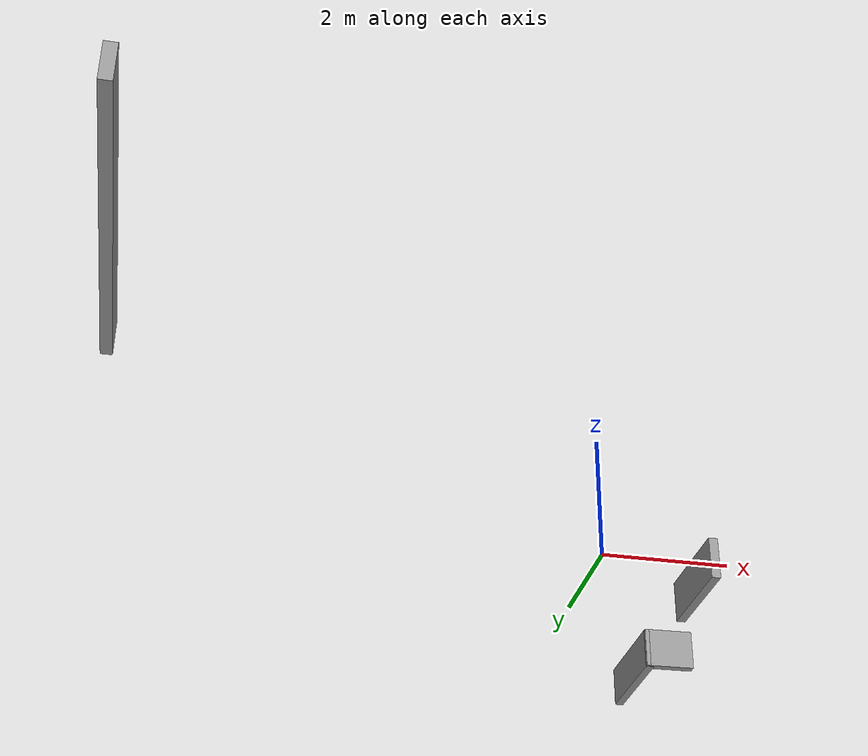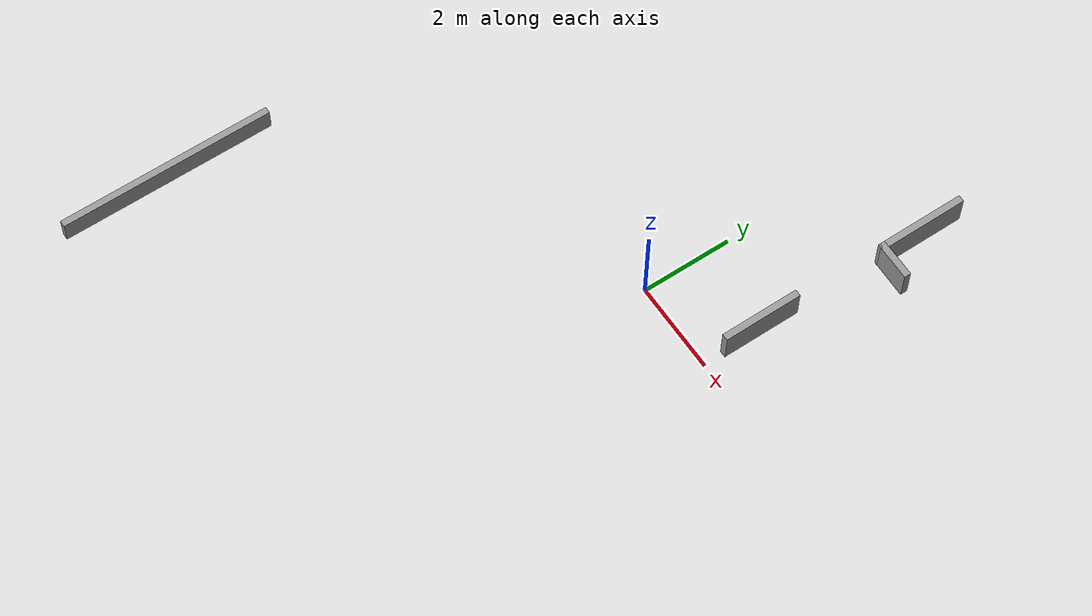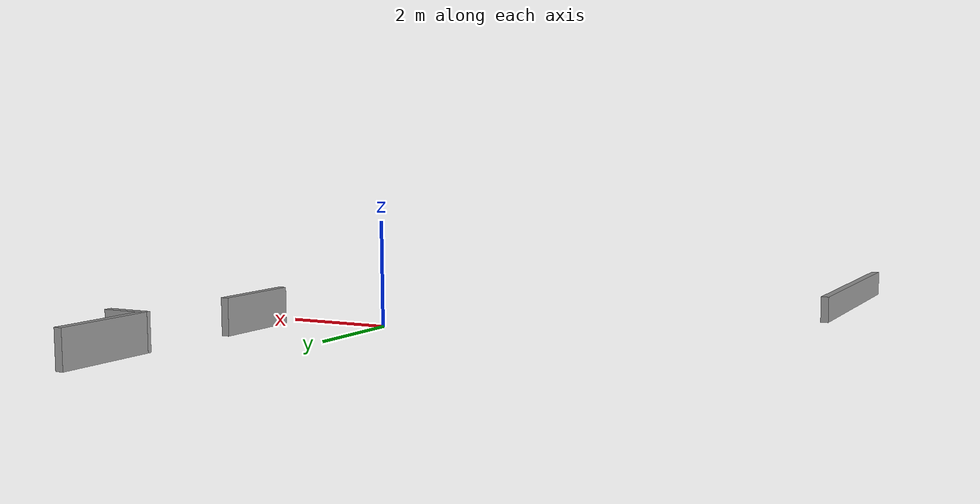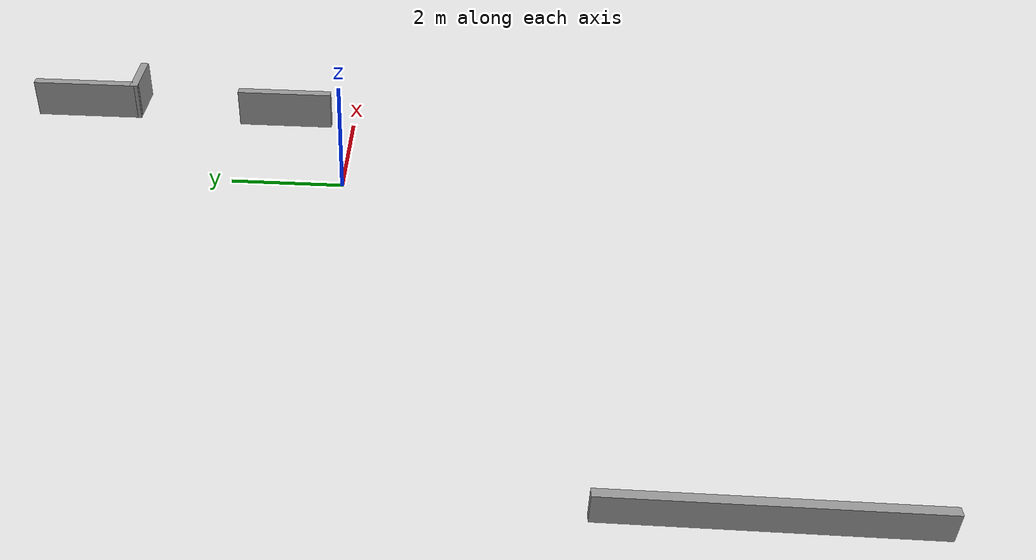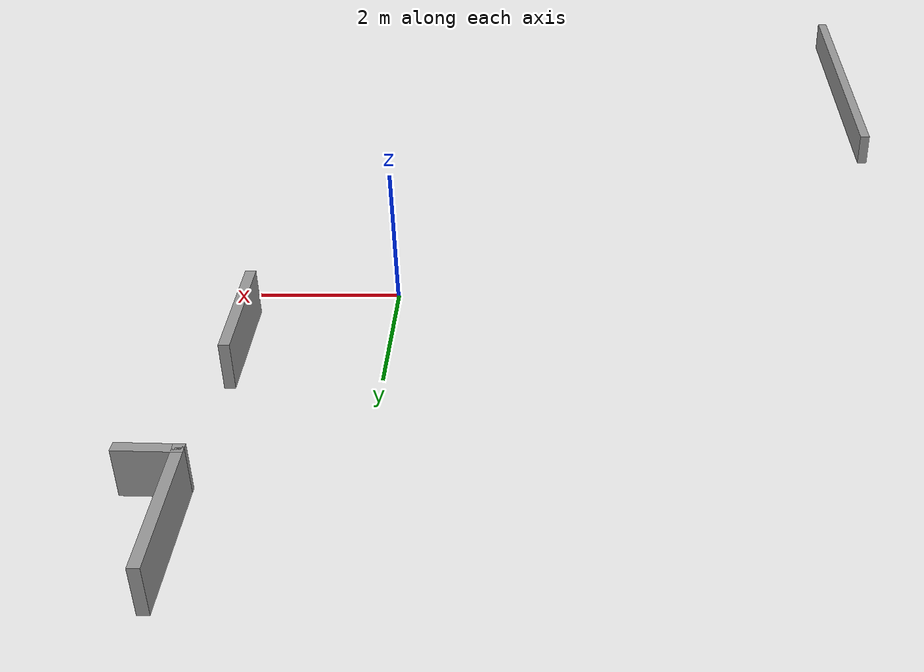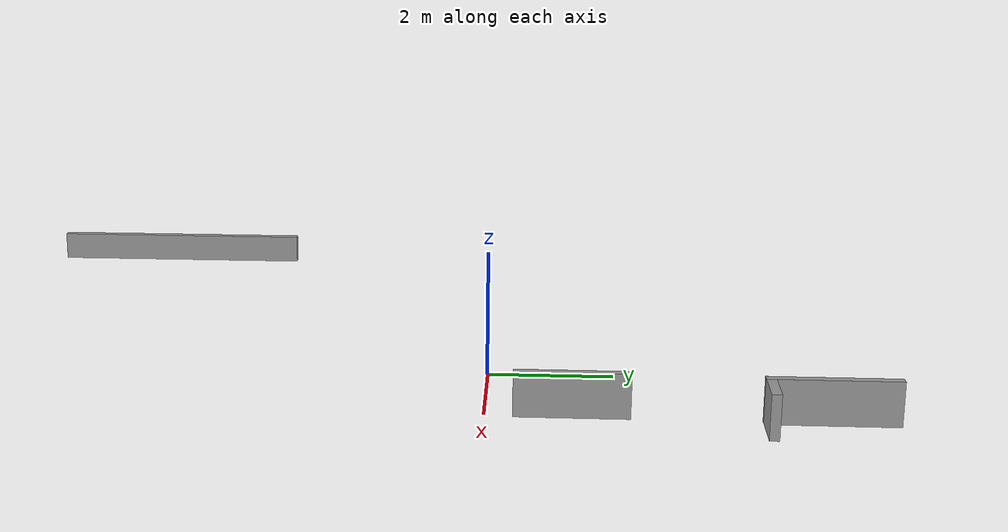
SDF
<?xml version='1.0'?>
<sdf version='1.7'>
  <model name='add_wall5'>
    <pose>-2.3113 -1.36 0 0 -0 0</pose>
    <link name='Wall_1'>
      <collision name='Wall_1_Collision'>
        <geometry>
          <box>
            <size>0.86487 0.15 0.7</size>
          </box>
        </geometry>
        <pose>0 0 0.35 0 -0 0</pose>
      </collision>
      <visual name='Wall_1_Visual'>
        <pose>0 0 0.35 0 -0 0</pose>
        <geometry>
          <box>
            <size>0.86487 0.15 0.7</size>
          </box>
        </geometry>
        <material>
          <script>
            <uri>file://media/materials/scripts/gazebo.material</uri>
            <name>Gazebo/Grey</name>
          </script>
          <ambient>1 1 1 1</ambient>
        </material>
        <meta>
          <layer>0</layer>
        </meta>
      </visual>
      <pose>4.75464 5.54068 0 0 -0 -0.023278</pose>
    </link>
    <link name='Wall_3'>
      <collision name='Wall_3_Collision'>
        <geometry>
          <box>
            <size>2 0.15 0.7</size>
          </box>
        </geometry>
        <pose>0 0 0.35 0 -0 0</pose>
      </collision>
      <visual name='Wall_3_Visual'>
        <pose>0 0 0.35 0 -0 0</pose>
        <geometry>
          <box>
            <size>2 0.15 0.7</size>
          </box>
        </geometry>
        <material>
          <script>
            <uri>file://media/materials/scripts/gazebo.material</uri>
            <name>Gazebo/Grey</name>
          </script>
          <ambient>1 1 1 1</ambient>
        </material>
        <meta>
          <layer>0</layer>
        </meta>
      </visual>
      <pose>4.3973 6.474 0 0 -0 1.5708</pose>
    </link>
    <link name='Wall_5'>
      <collision name='Wall_5_Collision'>
        <geometry>
          <box>
            <size>1.75 0.15 0.7</size>
          </box>
        </geometry>
        <pose>0 0 0.35 0 -0 0</pose>
      </collision>
      <visual name='Wall_5_Visual'>
        <pose>0 0 0.35 0 -0 0</pose>
        <geometry>
          <box>
            <size>1.75 0.15 0.7</size>
          </box>
        </geometry>
        <material>
          <script>
            <uri>file://media/materials/scripts/gazebo.material</uri>
            <name>Gazebo/Grey</name>
          </script>
          <ambient>1 1 1 1</ambient>
        </material>
        <meta>
          <layer>0</layer>
        </meta>
      </visual>
      <pose>4.30252 2.661 0 0 -0 -1.5708</pose>
    </link>
    <link name='Wall_7'>
      <collision name='Wall_7_Collision'>
        <geometry>
          <box>
            <size>4.75 0.15 0.5</size>
          </box>
        </geometry>
        <pose>0 0 0.25 0 -0 0</pose>
      </collision>
      <visual name='Wall_7_Visual'>
        <pose>0 0 0.25 0 -0 0</pose>
        <geometry>
          <box>
            <size>4.75 0.15 0.5</size>
          </box>
        </geometry>
        <material>
          <script>
            <uri>file://media/materials/scripts/gazebo.material</uri>
            <name>Gazebo/Grey</name>
          </script>
          <ambient>1 1 1 1</ambient>
        </material>
        <meta>
          <layer>0</layer>
        </meta>
      </visual>
      <pose>-5.1137 -5.099 0 0 -0 1.5708</pose>
    </link>
    <static>1</static>
  </model>
</sdf>
